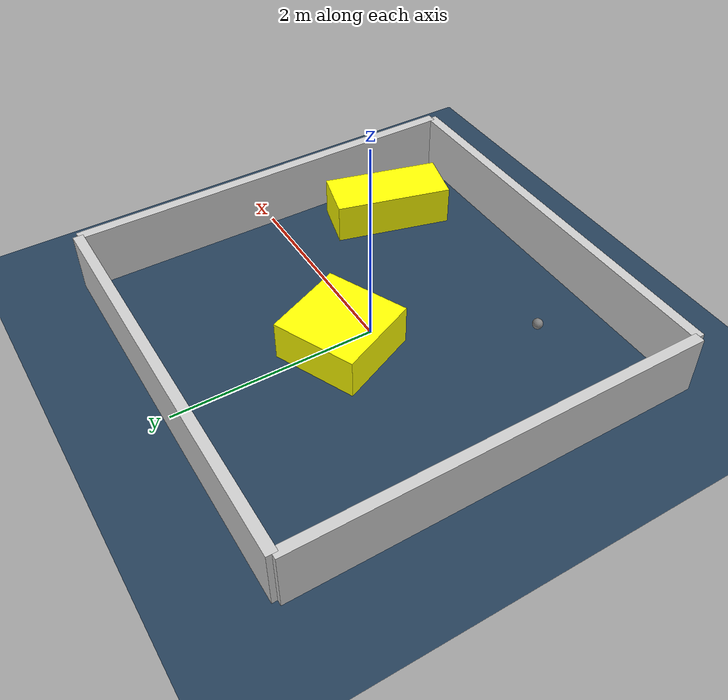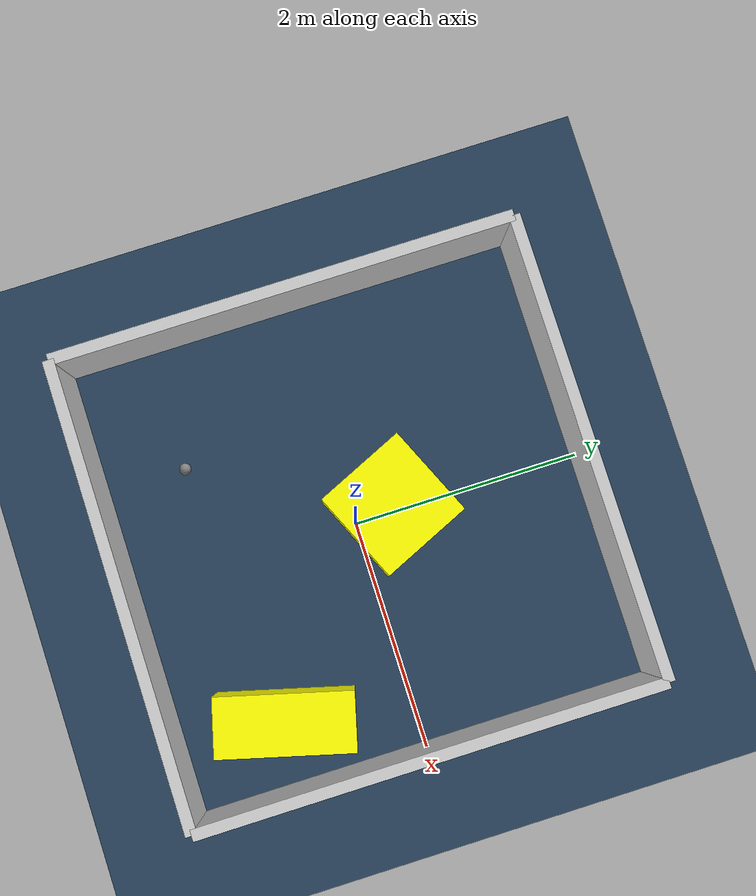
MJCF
<?xml version="1.0" ?>
<mujoco model="generated_environment">
  <option timestep="0.01" integrator="RK4" cone="elliptic"/>
  <default>
    <geom density="1"/>
  </default>
  <asset>
    <texture builtin="gradient" height="3072" rgb1="0.3 0.5 0.7" rgb2="0 0 0" type="skybox" width="512"/>
    <texture builtin="checker" height="300" mark="edge" markrgb="0.8 0.8 0.8" name="groundplane" rgb1="0.2 0.3 0.4" rgb2="0.1 0.2 0.3" type="2d" width="300"/>
    <material name="groundplane" reflectance="0.2" texrepeat="5 5" texture="groundplane" texuniform="true"/>
    <material name="robot" rgba="0.0 1.0 0.0 1"/>
  </asset>
  <worldbody>
    <light dir="0 0 -1" directional="true" pos="0 0 1.5"/>
    <geom condim="4" friction="1.0 0.005 0.001" material="groundplane" name="floor" size="0 0 0.05" type="plane"/>
    <body name="walls">
      <geom name="wall_1" condim="4" pos="-2.0 0.0 0.3" rgba="0.800000011920929 0.800000011920929 0.800000011920929 1.0" size="0.05 2.0 0.3" type="box"/>
      <geom name="wall_2" condim="4" pos="2.0 0.0 0.3" rgba="0.800000011920929 0.800000011920929 0.800000011920929 1.0" size="0.05 2.0 0.3" type="box"/>
      <geom name="wall_3" condim="4" pos="0.0 -2.0 0.3" rgba="0.800000011920929 0.800000011920929 0.800000011920929 1.0" size="2.0 0.05 0.3" type="box"/>
      <geom name="wall_4" condim="4" pos="0.0 2.0 0.3" rgba="0.800000011920929 0.800000011920929 0.800000011920929 1.0" size="2.0 0.05 0.3" type="box"/>
    </body>
    <body name="robot">
      <joint name="joint_x" type="slide" pos="0 0 0" axis="1 0 0"/>
      <joint name="joint_y" type="slide" pos="0 0 0" axis="0 1 0"/>
      <geom name="robot" type="sphere" pos="-0.8699531075477647 -1.2420050892448051 0.2" size="0.05" mass="5." friction="1.0 0.005 0.0001" condim="4"/>
      <site name="sensor_ball"/>
    </body>
    <body name="obstacle_1_movable">
      <geom name="obstacle_1_movable" condim="4" pos="1.4150578513479832 -1.0597991352066245 0.2" euler="0 0 345.2237196712948" friction="1.0 0.005 0.001" rgba="1 1 0 1" size="0.2556466168706274 0.5881891635423573 0.2" type="box" mass="0.1"/>
      <joint type="free"/>
    </body>
    <body name="obstacle_2_movable">
      <geom name="obstacle_2_movable" condim="4" pos="-0.041662151317879426 0.3382900394605155 0.2" euler="0 0 294.0321134766782" friction="1.0 0.005 0.001" rgba="1 1 0 1" size="0.4198277874212941 0.4230704544540206 0.2" type="box" mass="0.1"/>
      <joint type="free"/>
    </body>
  </worldbody>
  <actuator>
    <motor name="actuator_x" joint="joint_x" gear="1" ctrlrange="-1 1"/>
    <motor name="actuator_y" joint="joint_y" gear="1" ctrlrange="-1 1"/>
  </actuator>
</mujoco>
